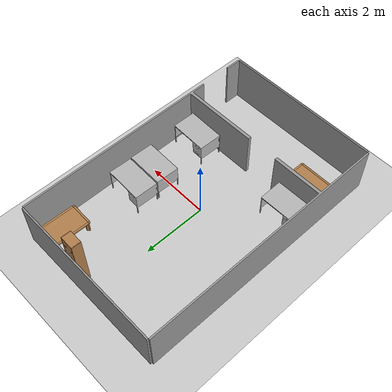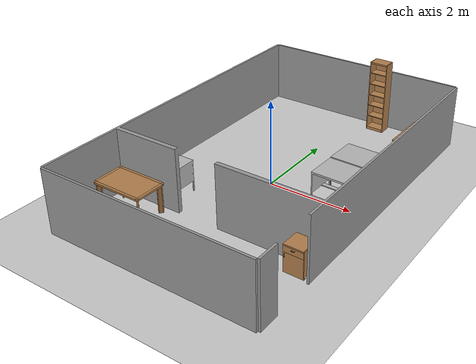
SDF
<sdf version="1.4">
 <world name="default">
  <scene>
   <ambient>0.5 0.5 0.5 1</ambient>
   <shadows>0</shadows>
   <grid>0</grid>
   <background>0.7 0.7 0.7 1</background>
  </scene>
  <physics type="ode">
   <real_time_update_rate>500.0</real_time_update_rate>
   <max_step_size>0.002</max_step_size>
   <ode><solver><type>quick</type><iters>100</iters></solver><constraints><cfm>0.0001</cfm></constraints></ode>
  </physics>
  <light name="user_directional_light_0" type="directional">
   <pose>0 0 5 0 -0 0</pose>
   <diffuse>0.5 0.5 0.5 1</diffuse>
   <specular>0.1 0.1 0.1 1</specular>
   <direction>0.1 0.1 -0.9</direction>
   <attenuation>
    <range>20</range>
    <constant>0.5</constant>
    <linear>0.01</linear>
    <quadratic>0.001</quadratic>
   </attenuation>
  </light>
  <model name="rnd_room_c3_a">
   <link name="link_0">
    <inertial>
     <mass>1</mass>
     <inertia>
      <ixx>0.166667</ixx>
      <ixy>0</ixy>
      <ixz>0</ixz>
      <iyy>0.166667</iyy>
      <iyz>0</iyz>
      <izz>0.166667</izz>
     </inertia>
    </inertial>
    <visual name="visual">
     <geometry><mesh><uri>model://RandomRooms/rnd_room_c2_02.dae</uri><scale>1 1 1</scale></mesh></geometry>
     <material>
      <lighting>1</lighting>
      <script><uri>model://RandomRooms/rnd_room_c2_02.dae</uri><name>Gazebo/Grey</name></script>
      <shader type="pixel"><normal_map>__default__</normal_map></shader>
     </material>
    </visual>
    <collision name="collision">
     <geometry><mesh><uri>model://RandomRooms/rnd_room_c2_02.dae</uri><scale>1 1 1</scale></mesh></geometry>
     <surface>
      <friction>
       <ode><mu>1</mu><mu2>1</mu2><fdir1>0 0 0</fdir1><slip1>0</slip1><slip2>0</slip2></ode>
       <torsional>
        <coefficient>1</coefficient>
        <patch_radius>0</patch_radius>
        <surface_radius>0</surface_radius>
        <use_patch_radius>1</use_patch_radius>
        <ode><slip>0</slip></ode>
       </torsional>
      </friction>
      <bounce><restitution_coefficient>0</restitution_coefficient><threshold>1e+06</threshold></bounce>
      <contact>
       <collide_without_contact>0</collide_without_contact>
       <collide_without_contact_bitmask>1</collide_without_contact_bitmask>
       <collide_bitmask>1</collide_bitmask>
       <ode>
        <soft_cfm>0</soft_cfm>
        <soft_erp>0.2</soft_erp>
        <kp>1e+13</kp>
        <kd>1</kd>
        <max_vel>0.01</max_vel>
        <min_depth>0</min_depth>
       </ode>
       <bullet>
        <split_impulse>1</split_impulse>
        <split_impulse_penetration_threshold>-0.01</split_impulse_penetration_threshold>
        <soft_cfm>0</soft_cfm>
        <soft_erp>0.2</soft_erp>
        <kp>1e+13</kp>
        <kd>1</kd>
       </bullet>
      </contact>
     </surface>
    </collision>
   </link>
   <static>1</static>
  </model>
  <model name="gplane">
   <link name="body">
    <collision name="gplane_coll">
     <geometry><plane><normal>0 0 1</normal><size>25 25</size></plane></geometry>
     <surface><contact><ode><kp>1e+06</kp><kd>1</kd></ode></contact></surface>
     <laser_retro>2000</laser_retro>
    </collision>
    <visual name="gplane_vis">
     <geometry><plane><normal>0 0 1</normal><size>25 25</size></plane></geometry>
     <material>
      <script>
       <uri>model://base_materials/carpet/scripts</uri>
       <uri>model://base_materials/carpet/textures</uri>
       <name>carpet/carpet01</name>
      </script>
     </material>
     <cast_shadows>0</cast_shadows>
    </visual>
    <velocity_decay><linear>0</linear><angular>0</angular></velocity_decay>
   </link>
   <static>1</static>
  </model>
  <model name="high_shelf_1">
   <link name="link">
    <inertial>
     <mass>5</mass>
     <inertia><ixx>1</ixx><ixy>0</ixy><ixz>0</ixz><iyy>1</iyy><iyz>0</iyz><izz>1</izz></inertia>
    </inertial>
    <visual name="left_board">
     <pose>-0.1475 0.009 0.898 0 -0 0</pose>
     <geometry><box><size>0.295 0.018 1.796</size></box></geometry>
     <material>
      <script>
       <uri>model://base_materials/wood/scripts</uri>
       <uri>model://base_materials/wood/textures</uri>
       <name>base_materials/light_wood</name>
      </script>
     </material>
    </visual>
    <collision name="collision_left_board">
     <pose>-0.1475 0.009 0.898 0 -0 0</pose>
     <geometry><box><size>0.295 0.018 1.796</size></box></geometry>
    </collision>
    <visual name="right_board">
     <pose>-0.1475 0.441 0.898 0 -0 0</pose>
     <geometry><box><size>0.295 0.018 1.796</size></box></geometry>
     <material>
      <script>
       <uri>model://base_materials/wood/scripts</uri>
       <uri>model://base_materials/wood/textures</uri>
       <name>base_materials/light_wood</name>
      </script>
     </material>
    </visual>
    <collision name="collision_right_board">
     <pose>-0.1475 0.441 0.898 0 -0 0</pose>
     <geometry><box><size>0.295 0.018 1.796</size></box></geometry>
    </collision>
    <visual name="top_board">
     <pose>-0.1475 0.225 1.7825 0 -0 0</pose>
     <geometry><box><size>0.295 0.414 0.035</size></box></geometry>
     <material>
      <script>
       <uri>model://base_materials/wood/scripts</uri>
       <uri>model://base_materials/wood/textures</uri>
       <name>base_materials/light_wood</name>
      </script>
     </material>
    </visual>
    <collision name="collision_top_board">
     <pose>-0.1475 0.225 1.7825 0 -0 0</pose>
     <geometry><box><size>0.295 0.414 0.035</size></box></geometry>
    </collision>
    <visual name="1st_shelf">
     <pose>-0.162 0.225 1.51 0 -0 0</pose>
     <geometry><box><size>0.266 0.414 0.018</size></box></geometry>
     <material>
      <script>
       <uri>model://base_materials/wood/scripts</uri>
       <uri>model://base_materials/wood/textures</uri>
       <name>base_materials/light_wood</name>
      </script>
     </material>
    </visual>
    <collision name="collision_1st_shelf">
     <pose>-0.162 0.225 1.51 0 -0 0</pose>
     <geometry><box><size>0.266 0.414 0.018</size></box></geometry>
    </collision>
    <visual name="2nd_shelf">
     <pose>-0.162 0.225 1.22 0 -0 0</pose>
     <geometry><box><size>0.266 0.414 0.018</size></box></geometry>
     <material>
      <script>
       <uri>model://base_materials/wood/scripts</uri>
       <uri>model://base_materials/wood/textures</uri>
       <name>base_materials/light_wood</name>
      </script>
     </material>
    </visual>
    <collision name="collision_2nd_shelf">
     <pose>-0.162 0.225 1.22 0 -0 0</pose>
     <geometry><box><size>0.266 0.414 0.018</size></box></geometry>
    </collision>
    <visual name="3rd_shelf">
     <pose>-0.162 0.225 0.93 0 -0 0</pose>
     <geometry><box><size>0.266 0.414 0.018</size></box></geometry>
     <material>
      <script>
       <uri>model://base_materials/wood/scripts</uri>
       <uri>model://base_materials/wood/textures</uri>
       <name>base_materials/light_wood</name>
      </script>
     </material>
    </visual>
    <collision name="collision_3rd_shelf">
     <pose>-0.162 0.225 0.93 0 -0 0</pose>
     <geometry><box><size>0.266 0.414 0.018</size></box></geometry>
    </collision>
    <visual name="4th_shelf">
     <pose>-0.162 0.225 0.65 0 -0 0</pose>
     <geometry><box><size>0.266 0.414 0.018</size></box></geometry>
     <material>
      <script>
       <uri>model://base_materials/wood/scripts</uri>
       <uri>model://base_materials/wood/textures</uri>
       <name>base_materials/light_wood</name>
      </script>
     </material>
    </visual>
    <collision name="collision_4th_shelf">
     <pose>-0.162 0.225 0.65 0 -0 0</pose>
     <geometry><box><size>0.266 0.414 0.018</size></box></geometry>
    </collision>
    <visual name="5th_shelf">
     <pose>-0.162 0.225 0.36 0 -0 0</pose>
     <geometry><box><size>0.266 0.414 0.018</size></box></geometry>
     <material>
      <script>
       <uri>model://base_materials/wood/scripts</uri>
       <uri>model://base_materials/wood/textures</uri>
       <name>base_materials/light_wood</name>
      </script>
     </material>
    </visual>
    <collision name="collision_5th_shelf">
     <pose>-0.162 0.225 0.36 0 -0 0</pose>
     <geometry><box><size>0.266 0.414 0.018</size></box></geometry>
    </collision>
    <visual name="bottom_board">
     <pose>-0.1475 0.225 0.035 0 -0 0</pose>
     <geometry><box><size>0.295 0.414 0.07</size></box></geometry>
     <material>
      <script>
       <uri>model://base_materials/wood/scripts</uri>
       <uri>model://base_materials/wood/textures</uri>
       <name>base_materials/light_wood</name>
      </script>
     </material>
    </visual>
    <collision name="collision_bottom_board">
     <pose>-0.1475 0.225 0.035 0 -0 0</pose>
     <geometry><box><size>0.295 0.414 0.07</size></box></geometry>
    </collision>
    <visual name="back_board">
     <pose>-0.286 0.225 0.898 0 -0 0</pose>
     <geometry><box><size>0.018 0.414 1.796</size></box></geometry>
     <material>
      <script>
       <uri>model://base_materials/wood/scripts</uri>
       <uri>model://base_materials/wood/textures</uri>
       <name>base_materials/light_wood</name>
      </script>
     </material>
    </visual>
    <collision name="collision_back_board">
     <pose>-0.286 0.225 0.898 0 -0 0</pose>
     <geometry><box><size>0.018 0.414 1.796</size></box></geometry>
    </collision>
    <velocity_decay><linear>0</linear><angular>0</angular></velocity_decay>
   </link>
   <static>1</static>
   <pose>0.444449 3.62359 0 0 0 -1.59244</pose>
  </model>
  <model name="Desk_04_1">
   <link name="link_0">
    <inertial>
     <mass>15</mass>
     <inertia>
      <ixx>0.166667</ixx>
      <ixy>0</ixy>
      <ixz>0</ixz>
      <iyy>0.166667</iyy>
      <iyz>0</iyz>
      <izz>0.166667</izz>
     </inertia>
    </inertial>
    <visual name="visual">
     <geometry><mesh><uri>model://BioRoboticsLab/meshes/Desk_04.dae</uri><scale>1 1 1</scale></mesh></geometry>
     <material><lighting>1</lighting><shader type="pixel"/></material>
    </visual>
    <collision name="collision">
     <geometry><mesh><uri>model://BioRoboticsLab/meshes/Desk_04.dae</uri><scale>1 1 1</scale></mesh></geometry>
     <surface>
      <friction>
       <ode><mu>1</mu><mu2>1</mu2><fdir1>0 0 0</fdir1><slip1>0</slip1><slip2>0</slip2></ode>
       <torsional>
        <coefficient>1</coefficient>
        <patch_radius>0</patch_radius>
        <surface_radius>0</surface_radius>
        <use_patch_radius>1</use_patch_radius>
        <ode><slip>0</slip></ode>
       </torsional>
      </friction>
      <bounce><restitution_coefficient>0</restitution_coefficient><threshold>1e+06</threshold></bounce>
      <contact>
       <collide_without_contact>0</collide_without_contact>
       <collide_without_contact_bitmask>1</collide_without_contact_bitmask>
       <collide_bitmask>1</collide_bitmask>
       <ode>
        <soft_cfm>0</soft_cfm>
        <soft_erp>0.2</soft_erp>
        <kp>1e+13</kp>
        <kd>1</kd>
        <max_vel>0.01</max_vel>
        <min_depth>0</min_depth>
       </ode>
       <bullet>
        <split_impulse>1</split_impulse>
        <split_impulse_penetration_threshold>-0.01</split_impulse_penetration_threshold>
        <soft_cfm>0</soft_cfm>
        <soft_erp>0.2</soft_erp>
        <kp>1e+13</kp>
        <kd>1</kd>
       </bullet>
      </contact>
     </surface>
    </collision>
   </link>
   <static>1</static>
   <pose>1.79304 -1.5451 0 0 0 -0.02691</pose>
  </model>
  <model name="Desk_04_2">
   <link name="link_0">
    <inertial>
     <mass>15</mass>
     <inertia>
      <ixx>0.166667</ixx>
      <ixy>0</ixy>
      <ixz>0</ixz>
      <iyy>0.166667</iyy>
      <iyz>0</iyz>
      <izz>0.166667</izz>
     </inertia>
    </inertial>
    <visual name="visual">
     <geometry><mesh><uri>model://BioRoboticsLab/meshes/Desk_04.dae</uri><scale>1 1 1</scale></mesh></geometry>
     <material><lighting>1</lighting><shader type="pixel"/></material>
    </visual>
    <collision name="collision">
     <geometry><mesh><uri>model://BioRoboticsLab/meshes/Desk_04.dae</uri><scale>1 1 1</scale></mesh></geometry>
     <surface>
      <friction>
       <ode><mu>1</mu><mu2>1</mu2><fdir1>0 0 0</fdir1><slip1>0</slip1><slip2>0</slip2></ode>
       <torsional>
        <coefficient>1</coefficient>
        <patch_radius>0</patch_radius>
        <surface_radius>0</surface_radius>
        <use_patch_radius>1</use_patch_radius>
        <ode><slip>0</slip></ode>
       </torsional>
      </friction>
      <bounce><restitution_coefficient>0</restitution_coefficient><threshold>1e+06</threshold></bounce>
      <contact>
       <collide_without_contact>0</collide_without_contact>
       <collide_without_contact_bitmask>1</collide_without_contact_bitmask>
       <collide_bitmask>1</collide_bitmask>
       <ode>
        <soft_cfm>0</soft_cfm>
        <soft_erp>0.2</soft_erp>
        <kp>1e+13</kp>
        <kd>1</kd>
        <max_vel>0.01</max_vel>
        <min_depth>0</min_depth>
       </ode>
       <bullet>
        <split_impulse>1</split_impulse>
        <split_impulse_penetration_threshold>-0.01</split_impulse_penetration_threshold>
        <soft_cfm>0</soft_cfm>
        <soft_erp>0.2</soft_erp>
        <kp>1e+13</kp>
        <kd>1</kd>
       </bullet>
      </contact>
     </surface>
    </collision>
   </link>
   <static>1</static>
   <pose>-1.80206 -1.55073 0 0 -0 0.009679</pose>
  </model>
  <model name="kitchen_lowtable_1">
   <link name="link">
    <inertial>
     <mass>10</mass>
     <inertia><ixx>1</ixx><ixy>0</ixy><ixz>0</ixz><iyy>1</iyy><iyz>0</iyz><izz>1</izz></inertia>
    </inertial>
    <visual name="center_board">
     <pose>0 0 0.38 0 -0 0</pose>
     <geometry><box><size>0.68 1.13 0.04</size></box></geometry>
     <material>
      <script><uri>model://base_materials/wood/scripts/wood.material</uri><name>base_materials/wood</name></script>
     </material>
    </visual>
    <collision name="collision_center_board">
     <pose>0 0 0.38 0 -0 0</pose>
     <geometry><box><size>0.68 1.13 0.04</size></box></geometry>
    </collision>
    <visual name="front_board">
     <pose>0.37 0 0.38 0 -0 0</pose>
     <geometry><box><size>0.06 1.13 0.04</size></box></geometry>
     <material>
      <script><uri>model://base_materials/wood/scripts/wood.material</uri><name>base_materials/wood</name></script>
     </material>
    </visual>
    <collision name="collision_front_board">
     <pose>0.37 0 0.38 0 -0 0</pose>
     <geometry><box><size>0.06 1.13 0.04</size></box></geometry>
    </collision>
    <visual name="back_board">
     <pose>-0.37 0 0.38 0 -0 0</pose>
     <geometry><box><size>0.06 1.13 0.04</size></box></geometry>
     <material>
      <script><uri>model://base_materials/wood/scripts/wood.material</uri><name>base_materials/wood</name></script>
     </material>
    </visual>
    <collision name="collision_back_board">
     <pose>-0.37 0 0.38 0 -0 0</pose>
     <geometry><box><size>0.06 1.13 0.04</size></box></geometry>
    </collision>
    <visual name="right_board">
     <pose>0 0.595 0.38 0 -0 0</pose>
     <geometry><box><size>0.68 0.06 0.04</size></box></geometry>
     <material>
      <script><uri>model://base_materials/wood/scripts/wood.material</uri><name>base_materials/wood</name></script>
     </material>
    </visual>
    <collision name="collision_right_board">
     <pose>0 0.595 0.38 0 -0 0</pose>
     <geometry><box><size>0.68 0.06 0.04</size></box></geometry>
    </collision>
    <visual name="left_board">
     <pose>0 -0.595 0.38 0 -0 0</pose>
     <geometry><box><size>0.68 0.06 0.04</size></box></geometry>
     <material>
      <script><uri>model://base_materials/wood/scripts/wood.material</uri><name>base_materials/wood</name></script>
     </material>
    </visual>
    <collision name="collision_left_board">
     <pose>0 -0.595 0.38 0 -0 0</pose>
     <geometry><box><size>0.68 0.06 0.04</size></box></geometry>
    </collision>
    <visual name="front_right_corner_board">
     <pose>0.34 0.565 0.38 0 -0 0</pose>
     <geometry><cylinder><radius>0.06</radius><length>0.039</length></cylinder></geometry>
     <material>
      <script><uri>model://base_materials/wood/scripts/wood.material</uri><name>base_materials/wood</name></script>
     </material>
    </visual>
    <collision name="collision_front_right_corner_board">
     <pose>0.34 0.565 0.38 0 -0 0</pose>
     <geometry><cylinder><radius>0.06</radius><length>0.039</length></cylinder></geometry>
    </collision>
    <visual name="front_left_corner_board">
     <pose>0.34 -0.565 0.38 0 -0 0</pose>
     <geometry><cylinder><radius>0.06</radius><length>0.039</length></cylinder></geometry>
     <material>
      <script><uri>model://base_materials/wood/scripts/wood.material</uri><name>base_materials/wood</name></script>
     </material>
    </visual>
    <collision name="collision_front_left_corner_board">
     <pose>0.34 -0.565 0.38 0 -0 0</pose>
     <geometry><cylinder><radius>0.06</radius><length>0.039</length></cylinder></geometry>
    </collision>
    <visual name="front_back_right_corner_board">
     <pose>-0.34 0.565 0.38 0 -0 0</pose>
     <geometry><cylinder><radius>0.06</radius><length>0.039</length></cylinder></geometry>
     <material>
      <script><uri>model://base_materials/wood/scripts/wood.material</uri><name>base_materials/wood</name></script>
     </material>
    </visual>
    <collision name="collision_back_right_corner_board">
     <pose>-0.34 0.565 0.38 0 -0 0</pose>
     <geometry><cylinder><radius>0.06</radius><length>0.039</length></cylinder></geometry>
    </collision>
    <visual name="front_back_left_corner_board">
     <pose>-0.34 -0.565 0.38 0 -0 0</pose>
     <geometry><cylinder><radius>0.06</radius><length>0.039</length></cylinder></geometry>
     <material>
      <script><uri>model://base_materials/wood/scripts/wood.material</uri><name>base_materials/wood</name></script>
     </material>
    </visual>
    <collision name="collision_back_left_corner_board">
     <pose>-0.34 -0.565 0.38 0 -0 0</pose>
     <geometry><cylinder><radius>0.06</radius><length>0.039</length></cylinder></geometry>
    </collision>
    <visual name="front_left_corner_frame1">
     <pose>0.345858 -0.57086 0.18 0 -0 0</pose>
     <geometry><cylinder><radius>0.02</radius><length>0.36</length></cylinder></geometry>
     <material>
      <script><uri>model://base_materials/wood/scripts/wood.material</uri><name>base_materials/wood</name></script>
     </material>
    </visual>
    <collision name="collision_front_left_corner_frame1">
     <pose>0.345858 -0.57086 0.18 0 -0 0</pose>
     <geometry><cylinder><radius>0.02</radius><length>0.36</length></cylinder></geometry>
    </collision>
    <visual name="front_left_corner_frame2">
     <pose>0.317574 -0.54257 0.18 0 -0 0.7854</pose>
     <geometry><box><size>0.04 0.08 0.36</size></box></geometry>
     <material>
      <script><uri>model://base_materials/wood/scripts/wood.material</uri><name>base_materials/wood</name></script>
     </material>
    </visual>
    <collision name="collision_front_left_corner_frame2">
     <pose>0.317574 -0.54257 0.18 0 -0 0.7854</pose>
     <geometry><box><size>0.04 0.08 0.36</size></box></geometry>
    </collision>
    <visual name="front_left_corner_frame3">
     <pose>0.289289 -0.51429 0.18 0 -0 0</pose>
     <geometry><cylinder><radius>0.02</radius><length>0.36</length></cylinder></geometry>
     <material>
      <script><uri>model://base_materials/wood/scripts/wood.material</uri><name>base_materials/wood</name></script>
     </material>
    </visual>
    <collision name="collision_front_left_corner_frame3">
     <pose>0.289289 -0.51429 0.18 0 -0 0</pose>
     <geometry><cylinder><radius>0.02</radius><length>0.36</length></cylinder></geometry>
    </collision>
    <visual name="front_right_corner_frame1">
     <pose>0.345858 0.57086 0.18 0 -0 0</pose>
     <geometry><cylinder><radius>0.02</radius><length>0.36</length></cylinder></geometry>
     <material>
      <script><uri>model://base_materials/wood/scripts/wood.material</uri><name>base_materials/wood</name></script>
     </material>
    </visual>
    <collision name="collision_front_right_corner_frame1">
     <pose>0.345858 0.57086 0.18 0 -0 0</pose>
     <geometry><cylinder><radius>0.02</radius><length>0.36</length></cylinder></geometry>
    </collision>
    <visual name="front_right_corner_frame2">
     <pose>0.317574 0.54257 0.18 0 0 -0.7854</pose>
     <geometry><box><size>0.04 0.08 0.36</size></box></geometry>
     <material>
      <script><uri>model://base_materials/wood/scripts/wood.material</uri><name>base_materials/wood</name></script>
     </material>
    </visual>
    <collision name="collision_front_right_corner_frame2">
     <pose>0.317574 0.54257 0.18 0 0 -0.7854</pose>
     <geometry><box><size>0.04 0.08 0.36</size></box></geometry>
    </collision>
    <visual name="front_right_corner_frame3">
     <pose>0.289289 0.51429 0.18 0 -0 0</pose>
     <geometry><cylinder><radius>0.02</radius><length>0.36</length></cylinder></geometry>
     <material>
      <script><uri>model://base_materials/wood/scripts/wood.material</uri><name>base_materials/wood</name></script>
     </material>
    </visual>
    <collision name="collision_front_right_corner_frame3">
     <pose>0.289289 0.51429 0.18 0 -0 0</pose>
     <geometry><cylinder><radius>0.02</radius><length>0.36</length></cylinder></geometry>
    </collision>
    <visual name="back_left_corner_frame1">
     <pose>-0.345858 -0.57086 0.18 0 -0 0</pose>
     <geometry><cylinder><radius>0.02</radius><length>0.36</length></cylinder></geometry>
     <material>
      <script><uri>model://base_materials/wood/scripts/wood.material</uri><name>base_materials/wood</name></script>
     </material>
    </visual>
    <collision name="collision_back_left_corner_frame1">
     <pose>-0.345858 -0.57086 0.18 0 -0 0</pose>
     <geometry><cylinder><radius>0.02</radius><length>0.36</length></cylinder></geometry>
    </collision>
    <visual name="back_left_corner_frame2">
     <pose>-0.317574 -0.54257 0.18 0 0 -0.7854</pose>
     <geometry><box><size>0.04 0.08 0.36</size></box></geometry>
     <material>
      <script><uri>model://base_materials/wood/scripts/wood.material</uri><name>base_materials/wood</name></script>
     </material>
    </visual>
    <collision name="collision_back_left_corner_frame2">
     <pose>-0.317574 -0.54257 0.18 0 0 -0.7854</pose>
     <geometry><box><size>0.04 0.08 0.36</size></box></geometry>
    </collision>
    <visual name="back_left_corner_frame3">
     <pose>-0.289289 -0.51429 0.18 0 -0 0</pose>
     <geometry><cylinder><radius>0.02</radius><length>0.36</length></cylinder></geometry>
     <material>
      <script><uri>model://base_materials/wood/scripts/wood.material</uri><name>base_materials/wood</name></script>
     </material>
    </visual>
    <collision name="collision_back_left_corner_frame3">
     <pose>-0.289289 -0.51429 0.18 0 -0 0</pose>
     <geometry><cylinder><radius>0.02</radius><length>0.36</length></cylinder></geometry>
    </collision>
    <visual name="back_right_corner_frame1">
     <pose>-0.345858 0.57086 0.18 0 -0 0</pose>
     <geometry><cylinder><radius>0.02</radius><length>0.36</length></cylinder></geometry>
     <material>
      <script><uri>model://base_materials/wood/scripts/wood.material</uri><name>base_materials/wood</name></script>
     </material>
    </visual>
    <collision name="collision_back_right_corner_frame1">
     <pose>-0.345858 0.57086 0.18 0 -0 0</pose>
     <geometry><cylinder><radius>0.02</radius><length>0.36</length></cylinder></geometry>
    </collision>
    <visual name="back_right_corner_frame2">
     <pose>-0.317574 0.54257 0.18 0 -0 0.7854</pose>
     <geometry><box><size>0.04 0.08 0.36</size></box></geometry>
     <material>
      <script><uri>model://base_materials/wood/scripts/wood.material</uri><name>base_materials/wood</name></script>
     </material>
    </visual>
    <collision name="collision_back_right_corner_frame2">
     <pose>-0.317574 0.54257 0.18 0 -0 0.7854</pose>
     <geometry><box><size>0.04 0.08 0.36</size></box></geometry>
    </collision>
    <visual name="back_right_corner_frame3">
     <pose>-0.289289 0.51429 0.18 0 -0 0</pose>
     <geometry><cylinder><radius>0.02</radius><length>0.36</length></cylinder></geometry>
     <material>
      <script><uri>model://base_materials/wood/scripts/wood.material</uri><name>base_materials/wood</name></script>
     </material>
    </visual>
    <collision name="collision_back_right_corner_frame3">
     <pose>-0.289289 0.51429 0.18 0 -0 0</pose>
     <geometry><cylinder><radius>0.02</radius><length>0.36</length></cylinder></geometry>
    </collision>
    <velocity_decay><linear>0</linear><angular>0</angular></velocity_decay>
   </link>
   <static>1</static>
   <pose>2.00677 3.28011 0 0 -0 3.11996</pose>
  </model>
  <model name="Desk_03_1">
   <link name="link_0">
    <inertial>
     <mass>25</mass>
     <inertia>
      <ixx>0.166667</ixx>
      <ixy>0</ixy>
      <ixz>0</ixz>
      <iyy>0.166667</iyy>
      <iyz>0</iyz>
      <izz>0.166667</izz>
     </inertia>
    </inertial>
    <visual name="visual">
     <geometry><mesh><uri>model://BioRoboticsLab/meshes/Desk_03.dae</uri><scale>1 1 1</scale></mesh></geometry>
     <material><lighting>1</lighting><shader type="pixel"/></material>
    </visual>
    <collision name="collision">
     <geometry><mesh><uri>model://BioRoboticsLab/meshes/Desk_03.dae</uri><scale>1 1 1</scale></mesh></geometry>
     <surface>
      <friction>
       <ode><mu>1</mu><mu2>1</mu2><fdir1>0 0 0</fdir1><slip1>0</slip1><slip2>0</slip2></ode>
       <torsional>
        <coefficient>1</coefficient>
        <patch_radius>0</patch_radius>
        <surface_radius>0</surface_radius>
        <use_patch_radius>1</use_patch_radius>
        <ode><slip>0</slip></ode>
       </torsional>
      </friction>
      <bounce><restitution_coefficient>0</restitution_coefficient><threshold>1e+06</threshold></bounce>
      <contact>
       <collide_without_contact>0</collide_without_contact>
       <collide_without_contact_bitmask>1</collide_without_contact_bitmask>
       <collide_bitmask>1</collide_bitmask>
       <ode>
        <soft_cfm>0</soft_cfm>
        <soft_erp>0.2</soft_erp>
        <kp>1e+13</kp>
        <kd>1</kd>
        <max_vel>0.01</max_vel>
        <min_depth>0</min_depth>
       </ode>
       <bullet>
        <split_impulse>1</split_impulse>
        <split_impulse_penetration_threshold>-0.01</split_impulse_penetration_threshold>
        <soft_cfm>0</soft_cfm>
        <soft_erp>0.2</soft_erp>
        <kp>1e+13</kp>
        <kd>1</kd>
       </bullet>
      </contact>
     </surface>
    </collision>
   </link>
   <static>1</static>
   <pose>1.73829 0.19246 0 0 -0 3.11736</pose>
  </model>
  <model name="wagon_1">
   <link name="link">
    <inertial>
     <mass>10</mass>
     <inertia><ixx>1</ixx><ixy>0</ixy><ixz>0</ixz><iyy>1</iyy><iyz>0</iyz><izz>1</izz></inertia>
    </inertial>
    <visual name="left_board">
     <pose>-0.2325 0.01 0.345 0 -0 0</pose>
     <geometry><box><size>0.415 0.02 0.59</size></box></geometry>
     <material>
      <script><uri>model://base_materials/wood/scripts/wood.material</uri><name>base_materials/wood</name></script>
     </material>
    </visual>
    <collision name="collision_left_board">
     <pose>-0.2325 0.01 0.345 0 -0 0</pose>
     <geometry><box><size>0.415 0.02 0.59</size></box></geometry>
    </collision>
    <visual name="right_board">
     <pose>-0.2325 0.4325 0.345 0 -0 0</pose>
     <geometry><box><size>0.415 0.02 0.59</size></box></geometry>
     <material>
      <script><uri>model://base_materials/wood/scripts/wood.material</uri><name>base_materials/wood</name></script>
     </material>
    </visual>
    <collision name="collision_right_board">
     <pose>-0.2325 0.4325 0.345 0 -0 0</pose>
     <geometry><box><size>0.415 0.02 0.59</size></box></geometry>
    </collision>
    <visual name="top_board">
     <pose>-0.22 0.2225 0.655 0 -0 0</pose>
     <geometry><box><size>0.44 0.445 0.03</size></box></geometry>
     <material>
      <script><uri>model://base_materials/wood/scripts/wood.material</uri><name>base_materials/wood</name></script>
     </material>
    </visual>
    <collision name="collision_top_board">
     <pose>-0.22 0.2225 0.655 0 -0 0</pose>
     <geometry><box><size>0.44 0.445 0.03</size></box></geometry>
    </collision>
    <visual name="back_board">
     <pose>-0.425 0.2225 0.345 0 -0 0</pose>
     <geometry><box><size>0.02 0.405 0.59</size></box></geometry>
     <material>
      <script><uri>model://base_materials/wood/scripts/wood.material</uri><name>base_materials/wood</name></script>
     </material>
    </visual>
    <collision name="collision_back_board">
     <pose>-0.425 0.2225 0.345 0 -0 0</pose>
     <geometry><box><size>0.02 0.405 0.59</size></box></geometry>
    </collision>
    <visual name="bottom_board">
     <pose>-0.2325 0.2225 0.06 0 -0 0</pose>
     <geometry><box><size>0.415 0.405 0.02</size></box></geometry>
     <material>
      <script><uri>model://base_materials/wood/scripts/wood.material</uri><name>base_materials/wood</name></script>
     </material>
    </visual>
    <collision name="collision_bottom_board">
     <pose>-0.2325 0.2225 0.06 0 -0 0</pose>
     <geometry><box><size>0.415 0.405 0.02</size></box></geometry>
    </collision>
    <visual name="1st_drawer">
     <pose>-0.0125 0.2225 0.57 0 -0 0</pose>
     <geometry><box><size>0.025 0.445 0.14</size></box></geometry>
     <material>
      <script><uri>model://base_materials/wood/scripts/wood.material</uri><name>base_materials/wood</name></script>
     </material>
    </visual>
    <collision name="collision_1st_drawer">
     <pose>-0.0125 0.2225 0.57 0 -0 0</pose>
     <geometry><box><size>0.025 0.445 0.14</size></box></geometry>
    </collision>
    <visual name="1st_drawer_handle_l1">
     <pose>0.0115 0.1895 0.6 3.14159 1.57079 3.14159</pose>
     <geometry><cylinder><radius>0.007</radius><length>0.023</length></cylinder></geometry>
     <material>
      <ambient>0.18431 0.3098 0.3098 1</ambient>
      <diffuse>0.18431 0.3098 0.3098 1</diffuse>
      <specular>0.1 0.1 0.1 1</specular>
     </material>
    </visual>
    <collision name="collision_1st_drawer_handle_l1">
     <pose>0.0115 0.1895 0.6 3.14159 1.57079 3.14159</pose>
     <geometry><cylinder><radius>0.007</radius><length>0.023</length></cylinder></geometry>
    </collision>
    <visual name="1st_drawer_handle_l2">
     <pose>0.023 0.1895 0.6 0 -0 0</pose>
     <geometry><sphere><radius>0.007</radius></sphere></geometry>
     <material>
      <ambient>0.18431 0.3098 0.3098 1</ambient>
      <diffuse>0.18431 0.3098 0.3098 1</diffuse>
      <specular>0.1 0.1 0.1 1</specular>
     </material>
    </visual>
    <collision name="collision_1st_drawer_handle_l2">
     <pose>0.023 0.1895 0.6 0 -0 0</pose>
     <geometry><sphere><radius>0.007</radius></sphere></geometry>
    </collision>
    <visual name="1st_drawer_handle_r1">
     <pose>0.0115 0.2555 0.6 3.14159 1.57079 3.14159</pose>
     <geometry><cylinder><radius>0.007</radius><length>0.023</length></cylinder></geometry>
     <material>
      <ambient>0.18431 0.3098 0.3098 1</ambient>
      <diffuse>0.18431 0.3098 0.3098 1</diffuse>
      <specular>0.1 0.1 0.1 1</specular>
     </material>
    </visual>
    <collision name="collision_1st_drawer_handle_r1">
     <pose>0.0115 0.2555 0.6 3.14159 1.57079 3.14159</pose>
     <geometry><cylinder><radius>0.007</radius><length>0.023</length></cylinder></geometry>
    </collision>
    <visual name="1st_drawer_handle_r2">
     <pose>0.023 0.2555 0.6 0 -0 0</pose>
     <geometry><sphere><radius>0.007</radius></sphere></geometry>
     <material>
      <ambient>0.18431 0.3098 0.3098 1</ambient>
      <diffuse>0.18431 0.3098 0.3098 1</diffuse>
      <specular>0.1 0.1 0.1 1</specular>
     </material>
    </visual>
    <collision name="collision_1st_drawer_handle_r2">
     <pose>0.023 0.2555 0.6 0 -0 0</pose>
     <geometry><sphere><radius>0.007</radius></sphere></geometry>
    </collision>
    <visual name="1st_drawer_handle_center">
     <pose>0.023 0.2225 0.6 1.5708 -0 0</pose>
     <geometry><cylinder><radius>0.007</radius><length>0.066</length></cylinder></geometry>
     <material>
      <ambient>0.18431 0.3098 0.3098 1</ambient>
      <diffuse>0.18431 0.3098 0.3098 1</diffuse>
      <specular>0.1 0.1 0.1 1</specular>
     </material>
    </visual>
    <collision name="collision_1st_drawer_handle_center">
     <pose>0.023 0.2225 0.6 1.5708 -0 0</pose>
     <geometry><cylinder><radius>0.007</radius><length>0.066</length></cylinder></geometry>
    </collision>
    <visual name="2nd_drawer">
     <pose>-0.0125 0.2225 0.275 0 -0 0</pose>
     <geometry><box><size>0.025 0.445 0.45</size></box></geometry>
     <material>
      <script><uri>model://base_materials/wood/scripts/wood.material</uri><name>base_materials/wood</name></script>
     </material>
    </visual>
    <collision name="collision_2nd_drawer">
     <pose>-0.0125 0.2225 0.275 0 -0 0</pose>
     <geometry><box><size>0.025 0.445 0.45</size></box></geometry>
    </collision>
    <visual name="2nd_drawer_handle_top1">
     <pose>0.0115 0.04 0.47 3.14159 1.57079 3.14159</pose>
     <geometry><cylinder><radius>0.007</radius><length>0.023</length></cylinder></geometry>
     <material>
      <ambient>0.18431 0.3098 0.3098 1</ambient>
      <diffuse>0.18431 0.3098 0.3098 1</diffuse>
      <specular>0.1 0.1 0.1 1</specular>
     </material>
    </visual>
    <collision name="collision_2nd_drawer_handle_top1">
     <pose>0.0115 0.04 0.47 3.14159 1.57079 3.14159</pose>
     <geometry><cylinder><radius>0.007</radius><length>0.023</length></cylinder></geometry>
    </collision>
    <visual name="2nd_drawer_handle_top2">
     <pose>0.023 0.04 0.47 0 -0 0</pose>
     <geometry><sphere><radius>0.007</radius></sphere></geometry>
     <material>
      <ambient>0.18431 0.3098 0.3098 1</ambient>
      <diffuse>0.18431 0.3098 0.3098 1</diffuse>
      <specular>0.1 0.1 0.1 1</specular>
     </material>
    </visual>
    <collision name="2nd_drawer_handle_top2">
     <pose>0.023 0.04 0.47 0 -0 0</pose>
     <geometry><sphere><radius>0.007</radius></sphere></geometry>
    </collision>
    <visual name="2nd_drawer_handle_bottom1">
     <pose>0.0115 0.04 0.404 3.14159 1.57079 3.14159</pose>
     <geometry><cylinder><radius>0.007</radius><length>0.023</length></cylinder></geometry>
     <material>
      <ambient>0.18431 0.3098 0.3098 1</ambient>
      <diffuse>0.18431 0.3098 0.3098 1</diffuse>
      <specular>0.1 0.1 0.1 1</specular>
     </material>
    </visual>
    <collision name="collision_2nd_drawer_handle_bottom1">
     <pose>0.0115 0.04 0.404 3.14159 1.57079 3.14159</pose>
     <geometry><cylinder><radius>0.007</radius><length>0.023</length></cylinder></geometry>
    </collision>
    <visual name="2nd_drawer_handle_bottom2">
     <pose>0.023 0.04 0.404 0 -0 0</pose>
     <geometry><sphere><radius>0.007</radius></sphere></geometry>
     <material>
      <ambient>0.18431 0.3098 0.3098 1</ambient>
      <diffuse>0.18431 0.3098 0.3098 1</diffuse>
      <specular>0.1 0.1 0.1 1</specular>
     </material>
    </visual>
    <collision name="2nd_drawer_handle_bottom2">
     <pose>0.023 0.04 0.404 0 -0 0</pose>
     <geometry><sphere><radius>0.007</radius></sphere></geometry>
    </collision>
    <visual name="2nd_drawer_handle_center">
     <pose>0.023 0.04 0.437 0 -0 0</pose>
     <geometry><cylinder><radius>0.007</radius><length>0.066</length></cylinder></geometry>
     <material>
      <ambient>0.18431 0.3098 0.3098 1</ambient>
      <diffuse>0.18431 0.3098 0.3098 1</diffuse>
      <specular>0.1 0.1 0.1 1</specular>
     </material>
    </visual>
    <collision name="collision_2nd_drawer_handle_center">
     <pose>0.023 0.04 0.437 0 -0 0</pose>
     <geometry><cylinder><radius>0.007</radius><length>0.066</length></cylinder></geometry>
    </collision>
    <visual name="left_front_caster">
     <pose>-0.07 0.025 0.025 3.14159 1.57079 3.14159</pose>
     <geometry><cylinder><radius>0.025</radius><length>0.035</length></cylinder></geometry>
     <material><script><name>Gazebo/Black</name><uri>__default__</uri></script></material>
    </visual>
    <collision name="collision_left_front_caster">
     <pose>-0.07 0.025 0.025 3.14159 1.57079 3.14159</pose>
     <geometry><cylinder><radius>0.025</radius><length>0.035</length></cylinder></geometry>
    </collision>
    <visual name="right_front_caster">
     <pose>-0.07 0.42 0.025 3.14159 1.57079 3.14159</pose>
     <geometry><cylinder><radius>0.025</radius><length>0.035</length></cylinder></geometry>
     <material><script><name>Gazebo/Black</name><uri>__default__</uri></script></material>
    </visual>
    <collision name="collision_right_front_caster">
     <pose>-0.07 0.42 0.025 3.14159 1.57079 3.14159</pose>
     <geometry><cylinder><radius>0.025</radius><length>0.035</length></cylinder></geometry>
    </collision>
    <visual name="left_back_caster">
     <pose>-0.39 0.025 0.025 3.14159 1.57079 3.14159</pose>
     <geometry><cylinder><radius>0.025</radius><length>0.035</length></cylinder></geometry>
     <material><script><name>Gazebo/Black</name><uri>__default__</uri></script></material>
    </visual>
    <collision name="collision_left_back_caster">
     <pose>-0.39 0.025 0.025 3.14159 1.57079 3.14159</pose>
     <geometry><cylinder><radius>0.025</radius><length>0.035</length></cylinder></geometry>
    </collision>
    <visual name="right_back_caster">
     <pose>-0.39 0.42 0.025 3.14159 1.57079 3.14159</pose>
     <geometry><cylinder><radius>0.025</radius><length>0.035</length></cylinder></geometry>
     <material><script><name>Gazebo/Black</name><uri>__default__</uri></script></material>
    </visual>
    <collision name="collision_right_back_caster">
     <pose>-0.39 0.42 0.025 3.14159 1.57079 3.14159</pose>
     <geometry><cylinder><radius>0.025</radius><length>0.035</length></cylinder></geometry>
    </collision>
    <velocity_decay><linear>0</linear><angular>0</angular></velocity_decay>
   </link>
   <static>1</static>
   <pose>1.98106 -2.49872 0 0 0 -1.58439</pose>
  </model>
  <model name="Desk_03_2">
   <link name="link_0">
    <inertial>
     <mass>25</mass>
     <inertia>
      <ixx>0.166667</ixx>
      <ixy>0</ixy>
      <ixz>0</ixz>
      <iyy>0.166667</iyy>
      <iyz>0</iyz>
      <izz>0.166667</izz>
     </inertia>
    </inertial>
    <visual name="visual">
     <geometry><mesh><uri>model://BioRoboticsLab/meshes/Desk_03.dae</uri><scale>1 1 1</scale></mesh></geometry>
     <material><lighting>1</lighting><shader type="pixel"/></material>
    </visual>
    <collision name="collision">
     <geometry><mesh><uri>model://BioRoboticsLab/meshes/Desk_03.dae</uri><scale>1 1 1</scale></mesh></geometry>
     <surface>
      <friction>
       <ode><mu>1</mu><mu2>1</mu2><fdir1>0 0 0</fdir1><slip1>0</slip1><slip2>0</slip2></ode>
       <torsional>
        <coefficient>1</coefficient>
        <patch_radius>0</patch_radius>
        <surface_radius>0</surface_radius>
        <use_patch_radius>1</use_patch_radius>
        <ode><slip>0</slip></ode>
       </torsional>
      </friction>
      <bounce><restitution_coefficient>0</restitution_coefficient><threshold>1e+06</threshold></bounce>
      <contact>
       <collide_without_contact>0</collide_without_contact>
       <collide_without_contact_bitmask>1</collide_without_contact_bitmask>
       <collide_bitmask>1</collide_bitmask>
       <ode>
        <soft_cfm>0</soft_cfm>
        <soft_erp>0.2</soft_erp>
        <kp>1e+13</kp>
        <kd>1</kd>
        <max_vel>0.01</max_vel>
        <min_depth>0</min_depth>
       </ode>
       <bullet>
        <split_impulse>1</split_impulse>
        <split_impulse_penetration_threshold>-0.01</split_impulse_penetration_threshold>
        <soft_cfm>0</soft_cfm>
        <soft_erp>0.2</soft_erp>
        <kp>1e+13</kp>
        <kd>1</kd>
       </bullet>
      </contact>
     </surface>
    </collision>
   </link>
   <static>1</static>
   <pose>1.74373 0.978051 0 0 0 -0.027771</pose>
  </model>
  <model name="kitchen_table_1">
   <link name="link">
    <inertial>
     <mass>10</mass>
     <inertia><ixx>1</ixx><ixy>0</ixy><ixz>0</ixz><iyy>1</iyy><iyz>0</iyz><izz>1</izz></inertia>
    </inertial>
    <visual name="center_board">
     <pose>0 0 0.68 0 -0 0</pose>
     <geometry><box><size>0.68 1.13 0.04</size></box></geometry>
     <material>
      <script><uri>model://base_materials/wood/scripts/wood.material</uri><name>base_materials/wood</name></script>
     </material>
    </visual>
    <collision name="collision_center_board">
     <pose>0 0 0.68 0 -0 0</pose>
     <geometry><box><size>0.68 1.13 0.04</size></box></geometry>
    </collision>
    <visual name="front_board">
     <pose>0.37 0 0.68 0 -0 0</pose>
     <geometry><box><size>0.06 1.13 0.04</size></box></geometry>
     <material>
      <script><uri>model://base_materials/wood/scripts/wood.material</uri><name>base_materials/wood</name></script>
     </material>
    </visual>
    <collision name="collision_front_board">
     <pose>0.37 0 0.68 0 -0 0</pose>
     <geometry><box><size>0.06 1.13 0.04</size></box></geometry>
    </collision>
    <visual name="back_board">
     <pose>-0.37 0 0.68 0 -0 0</pose>
     <geometry><box><size>0.06 1.13 0.04</size></box></geometry>
     <material>
      <script><uri>model://base_materials/wood/scripts/wood.material</uri><name>base_materials/wood</name></script>
     </material>
    </visual>
    <collision name="collision_back_board">
     <pose>-0.37 0 0.68 0 -0 0</pose>
     <geometry><box><size>0.06 1.13 0.04</size></box></geometry>
    </collision>
    <visual name="right_board">
     <pose>0 0.595 0.68 0 -0 0</pose>
     <geometry><box><size>0.68 0.06 0.04</size></box></geometry>
     <material>
      <script><uri>model://base_materials/wood/scripts/wood.material</uri><name>base_materials/wood</name></script>
     </material>
    </visual>
    <collision name="collision_right_board">
     <pose>0 0.595 0.68 0 -0 0</pose>
     <geometry><box><size>0.68 0.06 0.04</size></box></geometry>
    </collision>
    <visual name="left_board">
     <pose>0 -0.595 0.68 0 -0 0</pose>
     <geometry><box><size>0.68 0.06 0.04</size></box></geometry>
     <material>
      <script><uri>model://base_materials/wood/scripts/wood.material</uri><name>base_materials/wood</name></script>
     </material>
    </visual>
    <collision name="collision_left_board">
     <pose>0 -0.595 0.68 0 -0 0</pose>
     <geometry><box><size>0.68 0.06 0.04</size></box></geometry>
    </collision>
    <visual name="front_right_corner_board">
     <pose>0.34 0.565 0.68 0 -0 0</pose>
     <geometry><cylinder><radius>0.06</radius><length>0.039</length></cylinder></geometry>
     <material>
      <script><uri>model://base_materials/wood/scripts/wood.material</uri><name>base_materials/wood</name></script>
     </material>
    </visual>
    <collision name="collision_front_right_corner_board">
     <pose>0.34 0.565 0.68 0 -0 0</pose>
     <geometry><cylinder><radius>0.06</radius><length>0.039</length></cylinder></geometry>
    </collision>
    <visual name="front_left_corner_board">
     <pose>0.34 -0.565 0.68 0 -0 0</pose>
     <geometry><cylinder><radius>0.06</radius><length>0.039</length></cylinder></geometry>
     <material>
      <script><uri>model://base_materials/wood/scripts/wood.material</uri><name>base_materials/wood</name></script>
     </material>
    </visual>
    <collision name="collision_front_left_corner_board">
     <pose>0.34 -0.565 0.68 0 -0 0</pose>
     <geometry><cylinder><radius>0.06</radius><length>0.039</length></cylinder></geometry>
    </collision>
    <visual name="front_back_right_corner_board">
     <pose>-0.34 0.565 0.68 0 -0 0</pose>
     <geometry><cylinder><radius>0.06</radius><length>0.039</length></cylinder></geometry>
     <material>
      <script><uri>model://base_materials/wood/scripts/wood.material</uri><name>base_materials/wood</name></script>
     </material>
    </visual>
    <collision name="collision_back_right_corner_board">
     <pose>-0.34 0.565 0.68 0 -0 0</pose>
     <geometry><cylinder><radius>0.06</radius><length>0.039</length></cylinder></geometry>
    </collision>
    <visual name="front_back_left_corner_board">
     <pose>-0.34 -0.565 0.68 0 -0 0</pose>
     <geometry><cylinder><radius>0.06</radius><length>0.039</length></cylinder></geometry>
     <material>
      <script><uri>model://base_materials/wood/scripts/wood.material</uri><name>base_materials/wood</name></script>
     </material>
    </visual>
    <collision name="collision_back_left_corner_board">
     <pose>-0.34 -0.565 0.68 0 -0 0</pose>
     <geometry><cylinder><radius>0.06</radius><length>0.039</length></cylinder></geometry>
    </collision>
    <visual name="front_left_corner_frame1">
     <pose>0.345858 -0.57086 0.33 0 -0 0</pose>
     <geometry><cylinder><radius>0.02</radius><length>0.66</length></cylinder></geometry>
     <material>
      <script><uri>model://base_materials/wood/scripts/wood.material</uri><name>base_materials/wood</name></script>
     </material>
    </visual>
    <collision name="collision_front_left_corner_frame1">
     <pose>0.345858 -0.57086 0.33 0 -0 0</pose>
     <geometry><cylinder><radius>0.02</radius><length>0.66</length></cylinder></geometry>
    </collision>
    <visual name="front_left_corner_frame2">
     <pose>0.317574 -0.54257 0.33 0 -0 0.7854</pose>
     <geometry><box><size>0.04 0.08 0.66</size></box></geometry>
     <material>
      <script><uri>model://base_materials/wood/scripts/wood.material</uri><name>base_materials/wood</name></script>
     </material>
    </visual>
    <collision name="collision_front_left_corner_frame2">
     <pose>0.317574 -0.54257 0.33 0 -0 0.7854</pose>
     <geometry><box><size>0.04 0.08 0.66</size></box></geometry>
    </collision>
    <visual name="front_left_corner_frame3">
     <pose>0.289289 -0.51429 0.33 0 -0 0</pose>
     <geometry><cylinder><radius>0.02</radius><length>0.66</length></cylinder></geometry>
     <material>
      <script><uri>model://base_materials/wood/scripts/wood.material</uri><name>base_materials/wood</name></script>
     </material>
    </visual>
    <collision name="collision_front_left_corner_frame3">
     <pose>0.289289 -0.51429 0.33 0 -0 0</pose>
     <geometry><cylinder><radius>0.02</radius><length>0.66</length></cylinder></geometry>
    </collision>
    <visual name="front_right_corner_frame1">
     <pose>0.345858 0.57086 0.33 0 -0 0</pose>
     <geometry><cylinder><radius>0.02</radius><length>0.66</length></cylinder></geometry>
     <material>
      <script><uri>model://base_materials/wood/scripts/wood.material</uri><name>base_materials/wood</name></script>
     </material>
    </visual>
    <collision name="collision_front_right_corner_frame1">
     <pose>0.345858 0.57086 0.33 0 -0 0</pose>
     <geometry><cylinder><radius>0.02</radius><length>0.66</length></cylinder></geometry>
    </collision>
    <visual name="front_right_corner_frame2">
     <pose>0.317574 0.54257 0.33 0 0 -0.7854</pose>
     <geometry><box><size>0.04 0.08 0.66</size></box></geometry>
     <material>
      <script><uri>model://base_materials/wood/scripts/wood.material</uri><name>base_materials/wood</name></script>
     </material>
    </visual>
    <collision name="collision_front_right_corner_frame2">
     <pose>0.317574 0.54257 0.33 0 0 -0.7854</pose>
     <geometry><box><size>0.04 0.08 0.66</size></box></geometry>
    </collision>
    <visual name="front_right_corner_frame3">
     <pose>0.289289 0.51429 0.33 0 -0 0</pose>
     <geometry><cylinder><radius>0.02</radius><length>0.66</length></cylinder></geometry>
     <material>
      <script><uri>model://base_materials/wood/scripts/wood.material</uri><name>base_materials/wood</name></script>
     </material>
    </visual>
    <collision name="collision_front_right_corner_frame3">
     <pose>0.289289 0.51429 0.33 0 -0 0</pose>
     <geometry><cylinder><radius>0.02</radius><length>0.66</length></cylinder></geometry>
    </collision>
    <visual name="back_left_corner_frame1">
     <pose>-0.345858 -0.57086 0.33 0 -0 0</pose>
     <geometry><cylinder><radius>0.02</radius><length>0.66</length></cylinder></geometry>
     <material>
      <script><uri>model://base_materials/wood/scripts/wood.material</uri><name>base_materials/wood</name></script>
     </material>
    </visual>
    <collision name="collision_back_left_corner_frame1">
     <pose>-0.345858 -0.57086 0.33 0 -0 0</pose>
     <geometry><cylinder><radius>0.02</radius><length>0.66</length></cylinder></geometry>
    </collision>
    <visual name="back_left_corner_frame2">
     <pose>-0.317574 -0.54257 0.33 0 0 -0.7854</pose>
     <geometry><box><size>0.04 0.08 0.66</size></box></geometry>
     <material>
      <script><uri>model://base_materials/wood/scripts/wood.material</uri><name>base_materials/wood</name></script>
     </material>
    </visual>
    <collision name="collision_back_left_corner_frame2">
     <pose>-0.317574 -0.54257 0.33 0 0 -0.7854</pose>
     <geometry><box><size>0.04 0.08 0.66</size></box></geometry>
    </collision>
    <visual name="back_left_corner_frame3">
     <pose>-0.289289 -0.51429 0.33 0 -0 0</pose>
     <geometry><cylinder><radius>0.02</radius><length>0.66</length></cylinder></geometry>
     <material>
      <script><uri>model://base_materials/wood/scripts/wood.material</uri><name>base_materials/wood</name></script>
     </material>
    </visual>
    <collision name="collision_back_left_corner_frame3">
     <pose>-0.289289 -0.51429 0.33 0 -0 0</pose>
     <geometry><cylinder><radius>0.02</radius><length>0.66</length></cylinder></geometry>
    </collision>
    <visual name="back_right_corner_frame1">
     <pose>-0.345858 0.57086 0.33 0 -0 0</pose>
     <geometry><cylinder><radius>0.02</radius><length>0.66</length></cylinder></geometry>
     <material>
      <script><uri>model://base_materials/wood/scripts/wood.material</uri><name>base_materials/wood</name></script>
     </material>
    </visual>
    <collision name="collision_back_right_corner_frame1">
     <pose>-0.345858 0.57086 0.33 0 -0 0</pose>
     <geometry><cylinder><radius>0.02</radius><length>0.66</length></cylinder></geometry>
    </collision>
    <visual name="back_right_corner_frame2">
     <pose>-0.317574 0.54257 0.33 0 -0 0.7854</pose>
     <geometry><box><size>0.04 0.08 0.66</size></box></geometry>
     <material>
      <script><uri>model://base_materials/wood/scripts/wood.material</uri><name>base_materials/wood</name></script>
     </material>
    </visual>
    <collision name="collision_back_right_corner_frame2">
     <pose>-0.317574 0.54257 0.33 0 -0 0.7854</pose>
     <geometry><box><size>0.04 0.08 0.66</size></box></geometry>
    </collision>
    <visual name="back_right_corner_frame3">
     <pose>-0.289289 0.51429 0.33 0 -0 0</pose>
     <geometry><cylinder><radius>0.02</radius><length>0.66</length></cylinder></geometry>
     <material>
      <script><uri>model://base_materials/wood/scripts/wood.material</uri><name>base_materials/wood</name></script>
     </material>
    </visual>
    <collision name="collision_back_right_corner_frame3">
     <pose>-0.289289 0.51429 0.33 0 -0 0</pose>
     <geometry><cylinder><radius>0.02</radius><length>0.66</length></cylinder></geometry>
    </collision>
    <velocity_decay><linear>0</linear><angular>0</angular></velocity_decay>
   </link>
   <static>1</static>
   <pose>-1.76256 -2.5548 0 0 -0 1.56571</pose>
  </model>
 </world>
</sdf>
